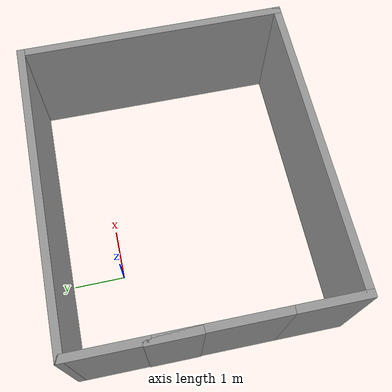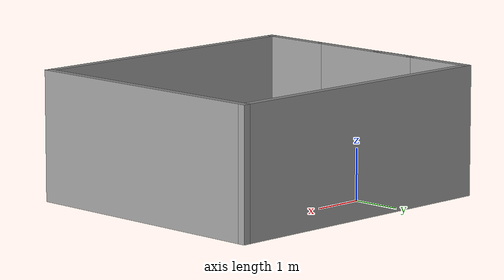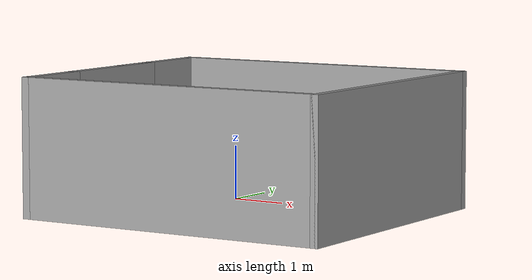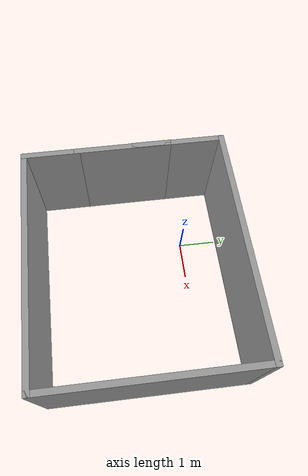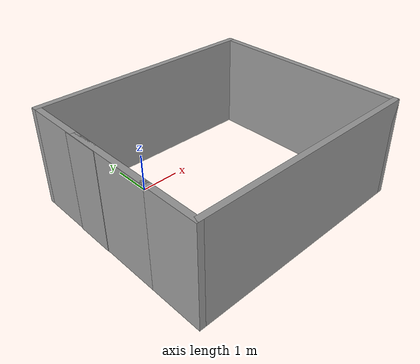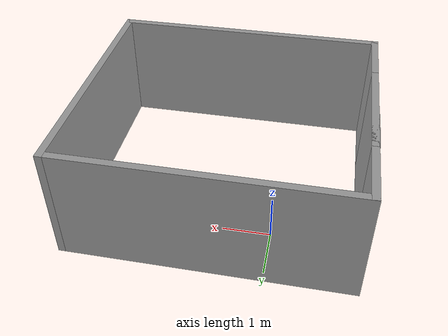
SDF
<?xml version='1.0'?>
<sdf version='1.7'>
  <model name='test'>
    <pose>1.15 -1.43 0 0 -0 0</pose>
    <link name='Wall_0'>
      <collision name='Wall_0_Collision'>
        <geometry>
          <box>
            <size>1 0.15 2.5</size>
          </box>
        </geometry>
        <pose>0 0 1.25 0 -0 0</pose>
      </collision>
      <visual name='Wall_0_Visual'>
        <pose>0 0 1.25 0 -0 0</pose>
        <geometry>
          <box>
            <size>1 0.15 2.5</size>
          </box>
        </geometry>
        <material>
          <script>
            <uri>file://media/materials/scripts/gazebo.material</uri>
            <name>Gazebo/Grey</name>
          </script>
          <ambient>1 1 1 1</ambient>
        </material>
        <meta>
          <layer>0</layer>
        </meta>
      </visual>
      <pose>-2.93 0.725 0 0 -0 1.5708</pose>
    </link>
    <link name='Wall_1'>
      <collision name='Wall_1_Collision'>
        <geometry>
          <box>
            <size>0.16 0.15 2.5</size>
          </box>
        </geometry>
        <pose>0 0 1.25 0 -0 0</pose>
      </collision>
      <visual name='Wall_1_Visual'>
        <pose>0 0 1.25 0 -0 0</pose>
        <geometry>
          <box>
            <size>0.16 0.15 2.5</size>
          </box>
        </geometry>
        <material>
          <script>
            <uri>file://media/materials/scripts/gazebo.material</uri>
            <name>Gazebo/Grey</name>
          </script>
          <ambient>1 1 1 1</ambient>
        </material>
        <meta>
          <layer>0</layer>
        </meta>
      </visual>
      <pose>-2.925 1.15 0 0 -0 0</pose>
    </link>
    <link name='Wall_2'>
      <collision name='Wall_2_Collision'>
        <geometry>
          <box>
            <size>2.5 0.15 2.5</size>
          </box>
        </geometry>
        <pose>0 0 1.25 0 -0 0</pose>
      </collision>
      <visual name='Wall_2_Visual'>
        <pose>0 0 1.25 0 -0 0</pose>
        <geometry>
          <box>
            <size>2.5 0.15 2.5</size>
          </box>
        </geometry>
        <material>
          <script>
            <uri>file://media/materials/scripts/gazebo.material</uri>
            <name>Gazebo/Grey</name>
          </script>
          <ambient>1 1 1 1</ambient>
        </material>
        <meta>
          <layer>0</layer>
        </meta>
      </visual>
      <pose>-2.92 -0.025 0 0 -0 -1.5708</pose>
    </link>
    <link name='Wall_3'>
      <collision name='Wall_3_Collision'>
        <geometry>
          <box>
            <size>1.5 0.15 2.5</size>
          </box>
        </geometry>
        <pose>0 0 1.25 0 -0 0</pose>
      </collision>
      <visual name='Wall_3_Visual'>
        <pose>0 0 1.25 0 -0 0</pose>
        <geometry>
          <box>
            <size>1.5 0.15 2.5</size>
          </box>
        </geometry>
        <material>
          <script>
            <uri>file://media/materials/scripts/gazebo.material</uri>
            <name>Gazebo/Grey</name>
          </script>
          <ambient>1 1 1 1</ambient>
        </material>
        <meta>
          <layer>0</layer>
        </meta>
      </visual>
      <pose>-2.92 -1.875 0 0 -0 -1.5708</pose>
    </link>
    <link name='Wall_4'>
      <collision name='Wall_4_Collision'>
        <geometry>
          <box>
            <size>6 0.15 2.5</size>
          </box>
        </geometry>
        <pose>0 0 1.25 0 -0 0</pose>
      </collision>
      <visual name='Wall_4_Visual'>
        <pose>0 0 1.25 0 -0 0</pose>
        <geometry>
          <box>
            <size>6 0.15 2.5</size>
          </box>
        </geometry>
        <material>
          <script>
            <uri>file://media/materials/scripts/gazebo.material</uri>
            <name>Gazebo/Grey</name>
          </script>
          <ambient>1 1 1 1</ambient>
        </material>
        <meta>
          <layer>0</layer>
        </meta>
      </visual>
      <pose>0.005 -2.55 0 0 -0 0</pose>
    </link>
    <link name='Wall_5'>
      <collision name='Wall_5_Collision'>
        <geometry>
          <box>
            <size>5.25 0.15 2.5</size>
          </box>
        </geometry>
        <pose>0 0 1.25 0 -0 0</pose>
      </collision>
      <visual name='Wall_5_Visual'>
        <pose>0 0 1.25 0 -0 0</pose>
        <geometry>
          <box>
            <size>5.25 0.15 2.5</size>
          </box>
        </geometry>
        <material>
          <script>
            <uri>file://media/materials/scripts/gazebo.material</uri>
            <name>Gazebo/Grey</name>
          </script>
          <ambient>1 1 1 1</ambient>
        </material>
        <meta>
          <layer>0</layer>
        </meta>
      </visual>
      <pose>2.93 0 0 0 -0 1.5708</pose>
    </link>
    <link name='Wall_6'>
      <collision name='Wall_6_Collision'>
        <geometry>
          <box>
            <size>6 0.15 2.5</size>
          </box>
        </geometry>
        <pose>0 0 1.25 0 -0 0</pose>
      </collision>
      <visual name='Wall_6_Visual'>
        <pose>0 0 1.25 0 -0 0</pose>
        <geometry>
          <box>
            <size>6 0.15 2.5</size>
          </box>
        </geometry>
        <material>
          <script>
            <uri>file://media/materials/scripts/gazebo.material</uri>
            <name>Gazebo/Grey</name>
          </script>
          <ambient>1 1 1 1</ambient>
        </material>
        <meta>
          <layer>0</layer>
        </meta>
      </visual>
      <pose>0.005 2.55 0 0 -0 3.14159</pose>
    </link>
    <link name='Wall_7'>
      <collision name='Wall_7_Collision'>
        <geometry>
          <box>
            <size>1.55 0.15 2.5</size>
          </box>
        </geometry>
        <pose>0 0 1.25 0 -0 0</pose>
      </collision>
      <visual name='Wall_7_Visual'>
        <pose>0 0 1.25 0 -0 0</pose>
        <geometry>
          <box>
            <size>1.55 0.15 2.5</size>
          </box>
        </geometry>
        <material>
          <script>
            <uri>file://media/materials/scripts/gazebo.material</uri>
            <name>Gazebo/Grey</name>
          </script>
          <ambient>1 1 1 1</ambient>
        </material>
        <meta>
          <layer>0</layer>
        </meta>
      </visual>
      <pose>-2.92 1.85 0 0 -0 -1.5708</pose>
    </link>
    <static>1</static>
  </model>
</sdf>
